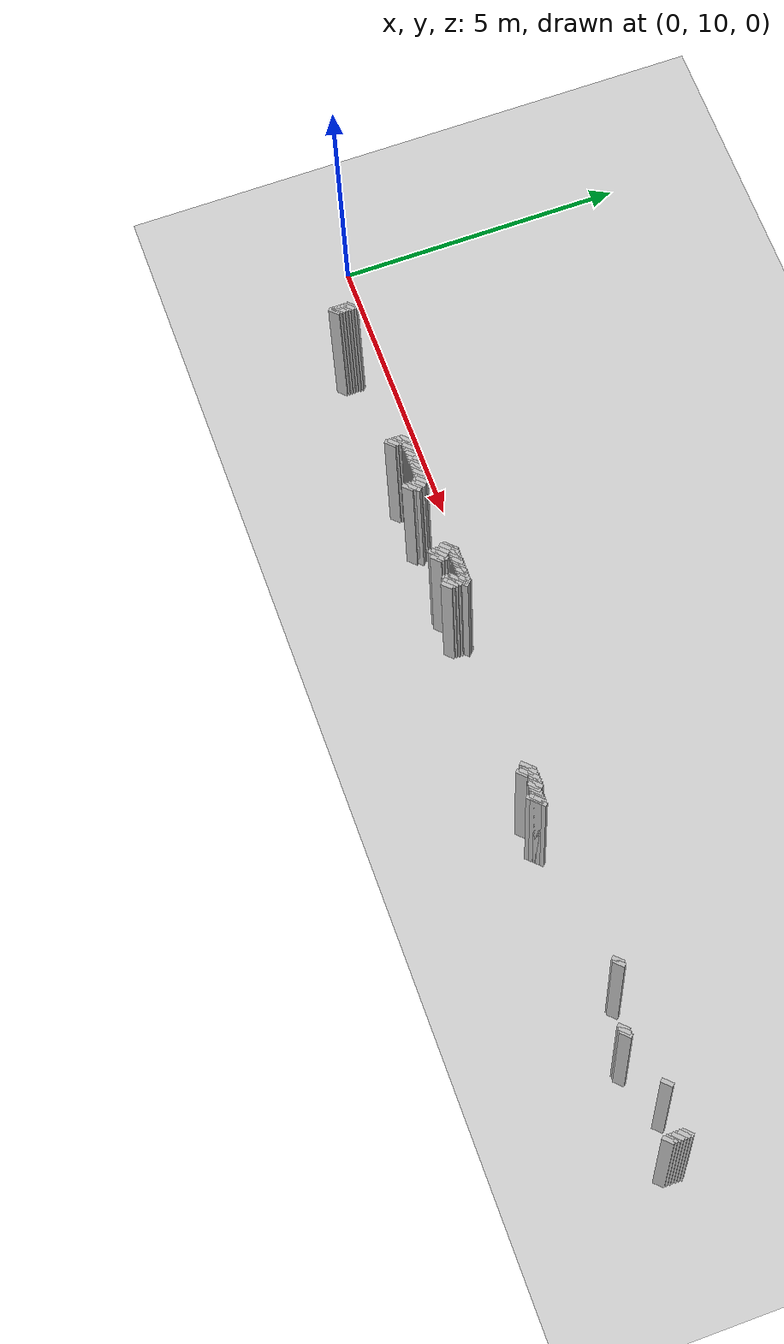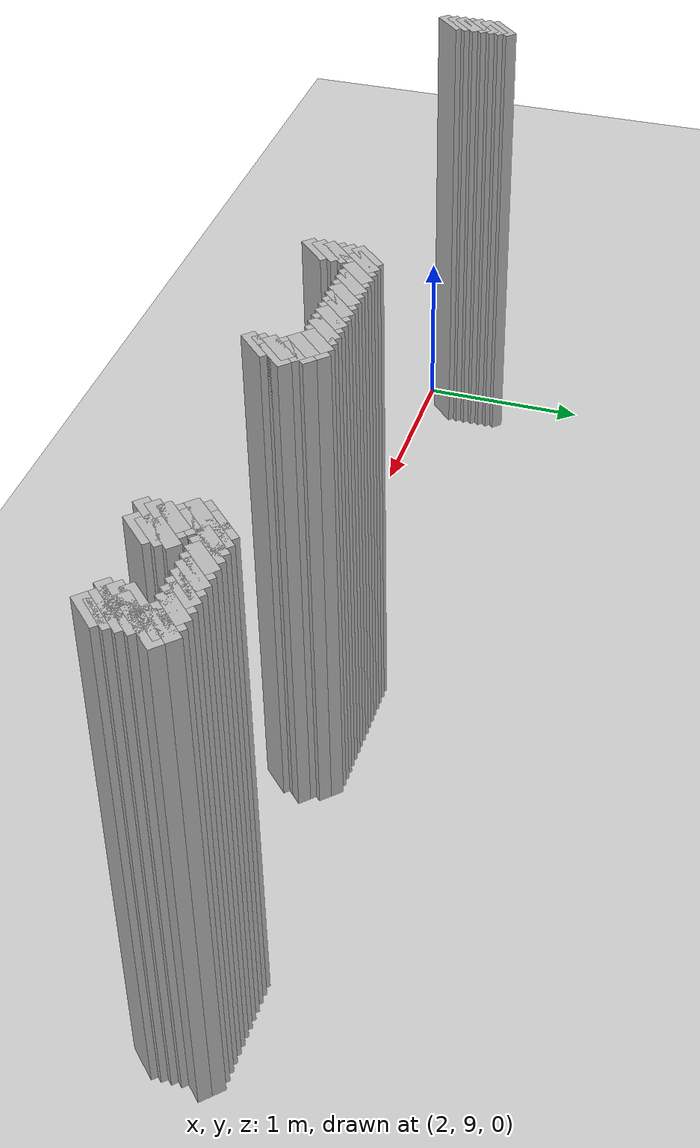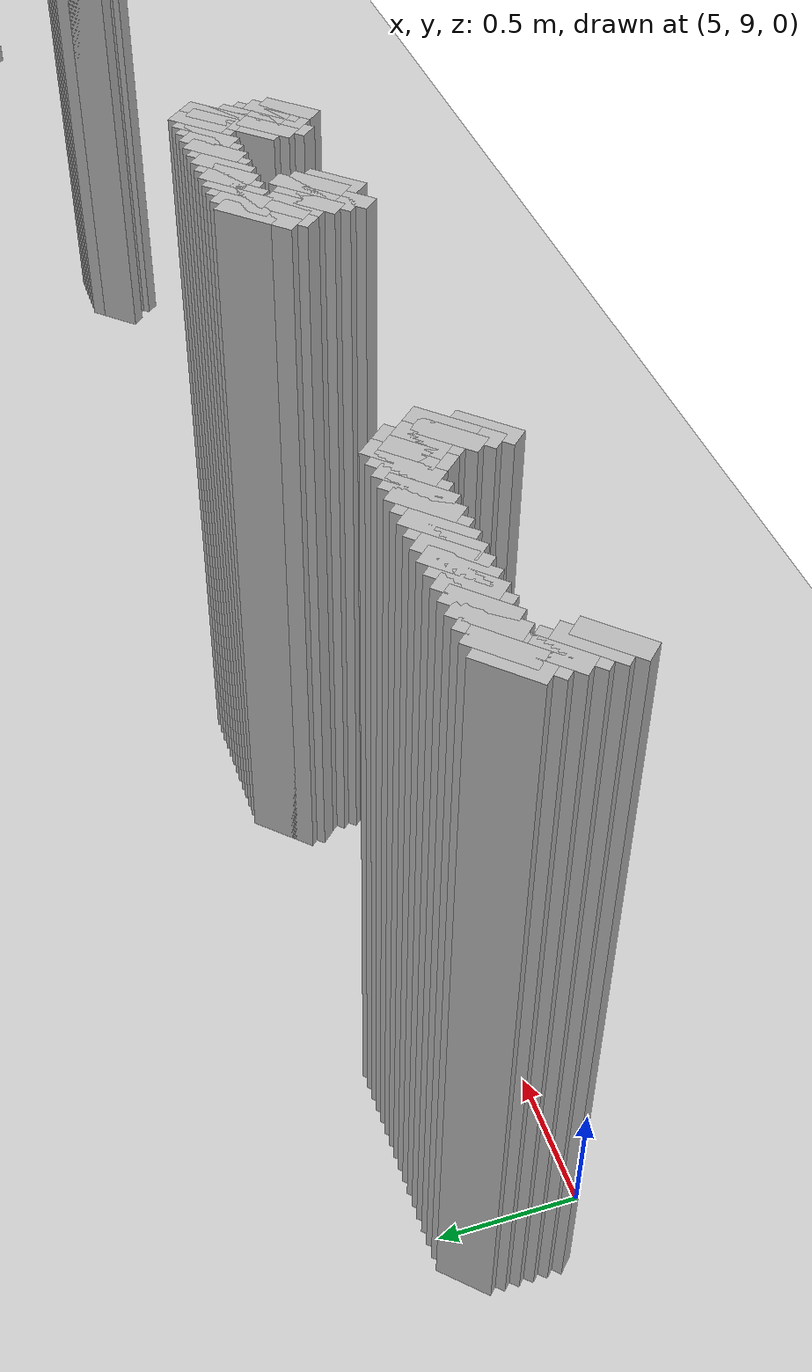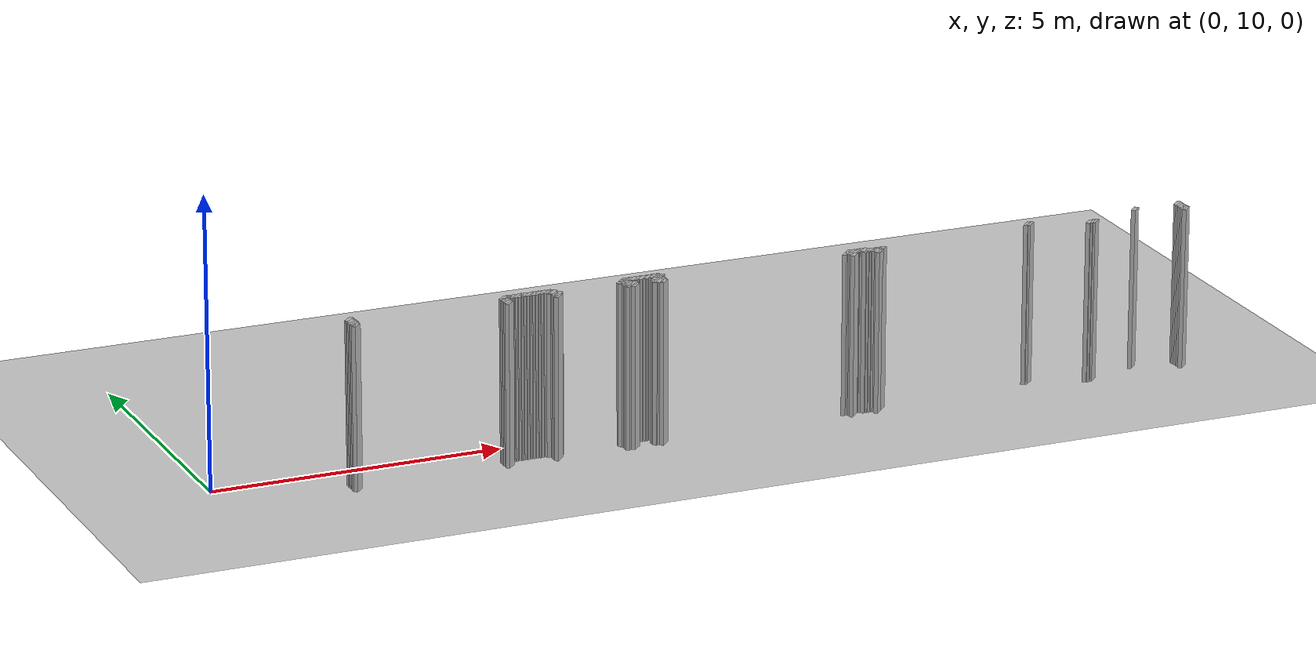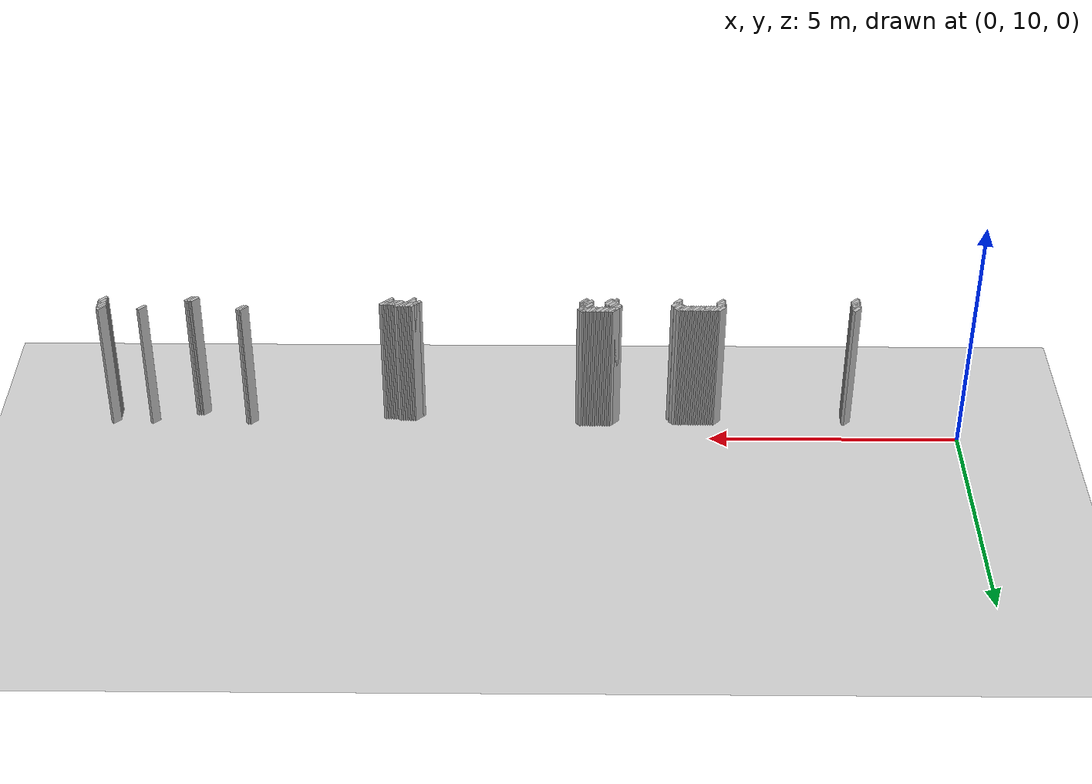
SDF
<sdf version="1.5">
 <world name="default">
  <include><uri>model://ground_plane</uri></include>
  <include><uri>model://sun</uri></include>
  <model name="grey_wall_1692">
   <static>1</static>
   <link name="link">
    <pose>6.95 9.5  1.4 0 0 -0.7853981633974483</pose>
    <collision name="collision">
     <geometry><box><size>0.07071067811865576 .2  2.8</size></box></geometry>
    </collision>
    <visual name="visual">
     <cast_shadows>0</cast_shadows>
     <geometry><box><size>0.07071067811865576 .2  2.8</size></box></geometry>
    </visual>
   </link>
  </model>
  <model name="grey_wall_1693">
   <static>1</static>
   <link name="link">
    <pose>7.0 9.5  1.4 0 0 -0.7853981633974483</pose>
    <collision name="collision">
     <geometry><box><size>0.07071067811865576 .2  2.8</size></box></geometry>
    </collision>
    <visual name="visual">
     <cast_shadows>0</cast_shadows>
     <geometry><box><size>0.07071067811865576 .2  2.8</size></box></geometry>
    </visual>
   </link>
  </model>
  <model name="grey_wall_1694">
   <static>1</static>
   <link name="link">
    <pose>7.050000000000001 9.5  1.4 0 0 -0.7853981633974483</pose>
    <collision name="collision">
     <geometry><box><size>0.07071067811865576 .2  2.8</size></box></geometry>
    </collision>
    <visual name="visual">
     <cast_shadows>0</cast_shadows>
     <geometry><box><size>0.07071067811865576 .2  2.8</size></box></geometry>
    </visual>
   </link>
  </model>
  <model name="grey_wall_1695">
   <static>1</static>
   <link name="link">
    <pose>7.1000000000000005 9.5  1.4 0 0 -0.7853981633974483</pose>
    <collision name="collision">
     <geometry><box><size>0.07071067811865576 .2  2.8</size></box></geometry>
    </collision>
    <visual name="visual">
     <cast_shadows>0</cast_shadows>
     <geometry><box><size>0.07071067811865576 .2  2.8</size></box></geometry>
    </visual>
   </link>
  </model>
  <model name="grey_wall_1696">
   <static>1</static>
   <link name="link">
    <pose>7.15 9.5  1.4 0 0 -0.7853981633974483</pose>
    <collision name="collision">
     <geometry><box><size>0.07071067811865576 .2  2.8</size></box></geometry>
    </collision>
    <visual name="visual">
     <cast_shadows>0</cast_shadows>
     <geometry><box><size>0.07071067811865576 .2  2.8</size></box></geometry>
    </visual>
   </link>
  </model>
  <model name="grey_wall_1697">
   <static>1</static>
   <link name="link">
    <pose>7.2 9.5  1.4 0 0 -0.7853981633974483</pose>
    <collision name="collision">
     <geometry><box><size>0.07071067811865576 .2  2.8</size></box></geometry>
    </collision>
    <visual name="visual">
     <cast_shadows>0</cast_shadows>
     <geometry><box><size>0.07071067811865576 .2  2.8</size></box></geometry>
    </visual>
   </link>
  </model>
  <model name="grey_wall_1698">
   <static>1</static>
   <link name="link">
    <pose>7.25 9.5  1.4 0 0 -0.7853981633974483</pose>
    <collision name="collision">
     <geometry><box><size>0.07071067811865576 .2  2.8</size></box></geometry>
    </collision>
    <visual name="visual">
     <cast_shadows>0</cast_shadows>
     <geometry><box><size>0.07071067811865576 .2  2.8</size></box></geometry>
    </visual>
   </link>
  </model>
  <model name="grey_wall_1699">
   <static>1</static>
   <link name="link">
    <pose>7.300000000000001 9.5  1.4 0 0 -0.7853981633974483</pose>
    <collision name="collision">
     <geometry><box><size>0.07071067811865576 .2  2.8</size></box></geometry>
    </collision>
    <visual name="visual">
     <cast_shadows>0</cast_shadows>
     <geometry><box><size>0.07071067811865576 .2  2.8</size></box></geometry>
    </visual>
   </link>
  </model>
  <model name="grey_wall_1700">
   <static>1</static>
   <link name="link">
    <pose>7.3500000000000005 9.5  1.4 0 0 -0.7853981633974483</pose>
    <collision name="collision">
     <geometry><box><size>0.07071067811865576 .2  2.8</size></box></geometry>
    </collision>
    <visual name="visual">
     <cast_shadows>0</cast_shadows>
     <geometry><box><size>0.07071067811865576 .2  2.8</size></box></geometry>
    </visual>
   </link>
  </model>
  <model name="grey_wall_1701">
   <static>1</static>
   <link name="link">
    <pose>7.4 9.5  1.4 0 0 -0.7853981633974483</pose>
    <collision name="collision">
     <geometry><box><size>0.07071067811865576 .2  2.8</size></box></geometry>
    </collision>
    <visual name="visual">
     <cast_shadows>0</cast_shadows>
     <geometry><box><size>0.07071067811865576 .2  2.8</size></box></geometry>
    </visual>
   </link>
  </model>
  <model name="grey_wall_1702">
   <static>1</static>
   <link name="link">
    <pose>7.45 9.5  1.4 0 0 -0.7853981633974483</pose>
    <collision name="collision">
     <geometry><box><size>0.07071067811865576 .2  2.8</size></box></geometry>
    </collision>
    <visual name="visual">
     <cast_shadows>0</cast_shadows>
     <geometry><box><size>0.07071067811865576 .2  2.8</size></box></geometry>
    </visual>
   </link>
  </model>
  <model name="grey_wall_1703">
   <static>1</static>
   <link name="link">
    <pose>7.5 9.5  1.4 0 0 -0.7853981633974483</pose>
    <collision name="collision">
     <geometry><box><size>0.07071067811865576 .2  2.8</size></box></geometry>
    </collision>
    <visual name="visual">
     <cast_shadows>0</cast_shadows>
     <geometry><box><size>0.07071067811865576 .2  2.8</size></box></geometry>
    </visual>
   </link>
  </model>
  <model name="grey_wall_1704">
   <static>1</static>
   <link name="link">
    <pose>7.550000000000001 9.5  1.4 0 0 -0.7853981633974483</pose>
    <collision name="collision">
     <geometry><box><size>0.07071067811865576 .2  2.8</size></box></geometry>
    </collision>
    <visual name="visual">
     <cast_shadows>0</cast_shadows>
     <geometry><box><size>0.07071067811865576 .2  2.8</size></box></geometry>
    </visual>
   </link>
  </model>
  <model name="grey_wall_1705">
   <static>1</static>
   <link name="link">
    <pose>14.25 9.5  1.4 0 0 -0.7853981633974483</pose>
    <collision name="collision">
     <geometry><box><size>0.07071067811865576 .2  2.8</size></box></geometry>
    </collision>
    <visual name="visual">
     <cast_shadows>0</cast_shadows>
     <geometry><box><size>0.07071067811865576 .2  2.8</size></box></geometry>
    </visual>
   </link>
  </model>
  <model name="grey_wall_1706">
   <static>1</static>
   <link name="link">
    <pose>14.3 9.5  1.4 0 0 -0.7853981633974483</pose>
    <collision name="collision">
     <geometry><box><size>0.07071067811865576 .2  2.8</size></box></geometry>
    </collision>
    <visual name="visual">
     <cast_shadows>0</cast_shadows>
     <geometry><box><size>0.07071067811865576 .2  2.8</size></box></geometry>
    </visual>
   </link>
  </model>
  <model name="grey_wall_1707">
   <static>1</static>
   <link name="link">
    <pose>16.25 9.5  1.4 0 0 -0.7853981633974838</pose>
    <collision name="collision">
     <geometry><box><size>0.07071067811865325 .2  2.8</size></box></geometry>
    </collision>
    <visual name="visual">
     <cast_shadows>0</cast_shadows>
     <geometry><box><size>0.07071067811865325 .2  2.8</size></box></geometry>
    </visual>
   </link>
  </model>
  <model name="grey_wall_1708">
   <static>1</static>
   <link name="link">
    <pose>17.05 9.5  1.4 0 0 -0.7853981633974838</pose>
    <collision name="collision">
     <geometry><box><size>0.07071067811865325 .2  2.8</size></box></geometry>
    </collision>
    <visual name="visual">
     <cast_shadows>0</cast_shadows>
     <geometry><box><size>0.07071067811865325 .2  2.8</size></box></geometry>
    </visual>
   </link>
  </model>
  <model name="grey_wall_1709">
   <static>1</static>
   <link name="link">
    <pose>2.2 9.450000000000001  1.4 0 0 -0.7853981633974572</pose>
    <collision name="collision">
     <geometry><box><size>0.07071067811865513 .2  2.8</size></box></geometry>
    </collision>
    <visual name="visual">
     <cast_shadows>0</cast_shadows>
     <geometry><box><size>0.07071067811865513 .2  2.8</size></box></geometry>
    </visual>
   </link>
  </model>
  <model name="grey_wall_1710">
   <static>1</static>
   <link name="link">
    <pose>4.8500000000000005 9.450000000000001  1.4 0 0 -0.7853981633974483</pose>
    <collision name="collision">
     <geometry><box><size>0.07071067811865576 .2  2.8</size></box></geometry>
    </collision>
    <visual name="visual">
     <cast_shadows>0</cast_shadows>
     <geometry><box><size>0.07071067811865576 .2  2.8</size></box></geometry>
    </visual>
   </link>
  </model>
  <model name="grey_wall_1711">
   <static>1</static>
   <link name="link">
    <pose>4.9 9.450000000000001  1.4 0 0 -0.7853981633974483</pose>
    <collision name="collision">
     <geometry><box><size>0.07071067811865576 .2  2.8</size></box></geometry>
    </collision>
    <visual name="visual">
     <cast_shadows>0</cast_shadows>
     <geometry><box><size>0.07071067811865576 .2  2.8</size></box></geometry>
    </visual>
   </link>
  </model>
  <model name="grey_wall_1712">
   <static>1</static>
   <link name="link">
    <pose>4.95 9.450000000000001  1.4 0 0 -0.7853981633974483</pose>
    <collision name="collision">
     <geometry><box><size>0.07071067811865576 .2  2.8</size></box></geometry>
    </collision>
    <visual name="visual">
     <cast_shadows>0</cast_shadows>
     <geometry><box><size>0.07071067811865576 .2  2.8</size></box></geometry>
    </visual>
   </link>
  </model>
  <model name="grey_wall_1713">
   <static>1</static>
   <link name="link">
    <pose>5.0 9.450000000000001  1.4 0 0 -0.7853981633974483</pose>
    <collision name="collision">
     <geometry><box><size>0.07071067811865576 .2  2.8</size></box></geometry>
    </collision>
    <visual name="visual">
     <cast_shadows>0</cast_shadows>
     <geometry><box><size>0.07071067811865576 .2  2.8</size></box></geometry>
    </visual>
   </link>
  </model>
  <model name="grey_wall_1714">
   <static>1</static>
   <link name="link">
    <pose>5.050000000000001 9.450000000000001  1.4 0 0 -0.7853981633974483</pose>
    <collision name="collision">
     <geometry><box><size>0.07071067811865576 .2  2.8</size></box></geometry>
    </collision>
    <visual name="visual">
     <cast_shadows>0</cast_shadows>
     <geometry><box><size>0.07071067811865576 .2  2.8</size></box></geometry>
    </visual>
   </link>
  </model>
  <model name="grey_wall_1715">
   <static>1</static>
   <link name="link">
    <pose>5.1000000000000005 9.450000000000001  1.4 0 0 -0.7853981633974483</pose>
    <collision name="collision">
     <geometry><box><size>0.07071067811865576 .2  2.8</size></box></geometry>
    </collision>
    <visual name="visual">
     <cast_shadows>0</cast_shadows>
     <geometry><box><size>0.07071067811865576 .2  2.8</size></box></geometry>
    </visual>
   </link>
  </model>
  <model name="grey_wall_1716">
   <static>1</static>
   <link name="link">
    <pose>5.15 9.450000000000001  1.4 0 0 -0.7853981633974483</pose>
    <collision name="collision">
     <geometry><box><size>0.07071067811865576 .2  2.8</size></box></geometry>
    </collision>
    <visual name="visual">
     <cast_shadows>0</cast_shadows>
     <geometry><box><size>0.07071067811865576 .2  2.8</size></box></geometry>
    </visual>
   </link>
  </model>
  <model name="grey_wall_1717">
   <static>1</static>
   <link name="link">
    <pose>5.2 9.450000000000001  1.4 0 0 -0.7853981633974483</pose>
    <collision name="collision">
     <geometry><box><size>0.07071067811865576 .2  2.8</size></box></geometry>
    </collision>
    <visual name="visual">
     <cast_shadows>0</cast_shadows>
     <geometry><box><size>0.07071067811865576 .2  2.8</size></box></geometry>
    </visual>
   </link>
  </model>
  <model name="grey_wall_1718">
   <static>1</static>
   <link name="link">
    <pose>5.25 9.450000000000001  1.4 0 0 -0.7853981633974483</pose>
    <collision name="collision">
     <geometry><box><size>0.07071067811865576 .2  2.8</size></box></geometry>
    </collision>
    <visual name="visual">
     <cast_shadows>0</cast_shadows>
     <geometry><box><size>0.07071067811865576 .2  2.8</size></box></geometry>
    </visual>
   </link>
  </model>
  <model name="grey_wall_1719">
   <static>1</static>
   <link name="link">
    <pose>5.300000000000001 9.450000000000001  1.4 0 0 -0.7853981633974483</pose>
    <collision name="collision">
     <geometry><box><size>0.07071067811865576 .2  2.8</size></box></geometry>
    </collision>
    <visual name="visual">
     <cast_shadows>0</cast_shadows>
     <geometry><box><size>0.07071067811865576 .2  2.8</size></box></geometry>
    </visual>
   </link>
  </model>
  <model name="grey_wall_1720">
   <static>1</static>
   <link name="link">
    <pose>5.3500000000000005 9.450000000000001  1.4 0 0 -0.7853981633974483</pose>
    <collision name="collision">
     <geometry><box><size>0.07071067811865576 .2  2.8</size></box></geometry>
    </collision>
    <visual name="visual">
     <cast_shadows>0</cast_shadows>
     <geometry><box><size>0.07071067811865576 .2  2.8</size></box></geometry>
    </visual>
   </link>
  </model>
  <model name="grey_wall_1721">
   <static>1</static>
   <link name="link">
    <pose>5.4 9.450000000000001  1.4 0 0 -0.7853981633974483</pose>
    <collision name="collision">
     <geometry><box><size>0.07071067811865576 .2  2.8</size></box></geometry>
    </collision>
    <visual name="visual">
     <cast_shadows>0</cast_shadows>
     <geometry><box><size>0.07071067811865576 .2  2.8</size></box></geometry>
    </visual>
   </link>
  </model>
  <model name="grey_wall_1722">
   <static>1</static>
   <link name="link">
    <pose>5.45 9.450000000000001  1.4 0 0 -0.7853981633974483</pose>
    <collision name="collision">
     <geometry><box><size>0.07071067811865576 .2  2.8</size></box></geometry>
    </collision>
    <visual name="visual">
     <cast_shadows>0</cast_shadows>
     <geometry><box><size>0.07071067811865576 .2  2.8</size></box></geometry>
    </visual>
   </link>
  </model>
  <model name="grey_wall_1723">
   <static>1</static>
   <link name="link">
    <pose>5.5 9.450000000000001  1.4 0 0 -0.7853981633974483</pose>
    <collision name="collision">
     <geometry><box><size>0.07071067811865576 .2  2.8</size></box></geometry>
    </collision>
    <visual name="visual">
     <cast_shadows>0</cast_shadows>
     <geometry><box><size>0.07071067811865576 .2  2.8</size></box></geometry>
    </visual>
   </link>
  </model>
  <model name="grey_wall_1724">
   <static>1</static>
   <link name="link">
    <pose>5.550000000000001 9.450000000000001  1.4 0 0 -0.7853981633974483</pose>
    <collision name="collision">
     <geometry><box><size>0.07071067811865576 .2  2.8</size></box></geometry>
    </collision>
    <visual name="visual">
     <cast_shadows>0</cast_shadows>
     <geometry><box><size>0.07071067811865576 .2  2.8</size></box></geometry>
    </visual>
   </link>
  </model>
  <model name="grey_wall_1725">
   <static>1</static>
   <link name="link">
    <pose>5.6000000000000005 9.450000000000001  1.4 0 0 -0.7853981633974483</pose>
    <collision name="collision">
     <geometry><box><size>0.07071067811865576 .2  2.8</size></box></geometry>
    </collision>
    <visual name="visual">
     <cast_shadows>0</cast_shadows>
     <geometry><box><size>0.07071067811865576 .2  2.8</size></box></geometry>
    </visual>
   </link>
  </model>
  <model name="grey_wall_1726">
   <static>1</static>
   <link name="link">
    <pose>5.65 9.450000000000001  1.4 0 0 -0.7853981633974483</pose>
    <collision name="collision">
     <geometry><box><size>0.07071067811865576 .2  2.8</size></box></geometry>
    </collision>
    <visual name="visual">
     <cast_shadows>0</cast_shadows>
     <geometry><box><size>0.07071067811865576 .2  2.8</size></box></geometry>
    </visual>
   </link>
  </model>
  <model name="grey_wall_1727">
   <static>1</static>
   <link name="link">
    <pose>6.9 9.450000000000001  1.4 0 0 -0.7853981633974483</pose>
    <collision name="collision">
     <geometry><box><size>0.07071067811865576 .2  2.8</size></box></geometry>
    </collision>
    <visual name="visual">
     <cast_shadows>0</cast_shadows>
     <geometry><box><size>0.07071067811865576 .2  2.8</size></box></geometry>
    </visual>
   </link>
  </model>
  <model name="grey_wall_1728">
   <static>1</static>
   <link name="link">
    <pose>7.550000000000001 9.450000000000001  1.4 0 0 -0.7853981633974483</pose>
    <collision name="collision">
     <geometry><box><size>0.07071067811865576 .2  2.8</size></box></geometry>
    </collision>
    <visual name="visual">
     <cast_shadows>0</cast_shadows>
     <geometry><box><size>0.07071067811865576 .2  2.8</size></box></geometry>
    </visual>
   </link>
  </model>
  <model name="grey_wall_1729">
   <static>1</static>
   <link name="link">
    <pose>7.6000000000000005 9.450000000000001  1.4 0 0 -0.7853981633974483</pose>
    <collision name="collision">
     <geometry><box><size>0.07071067811865576 .2  2.8</size></box></geometry>
    </collision>
    <visual name="visual">
     <cast_shadows>0</cast_shadows>
     <geometry><box><size>0.07071067811865576 .2  2.8</size></box></geometry>
    </visual>
   </link>
  </model>
  <model name="grey_wall_1730">
   <static>1</static>
   <link name="link">
    <pose>17.05 9.450000000000001  1.4 0 0 -0.7853981633974838</pose>
    <collision name="collision">
     <geometry><box><size>0.07071067811865325 .2  2.8</size></box></geometry>
    </collision>
    <visual name="visual">
     <cast_shadows>0</cast_shadows>
     <geometry><box><size>0.07071067811865325 .2  2.8</size></box></geometry>
    </visual>
   </link>
  </model>
  <model name="grey_wall_1731">
   <static>1</static>
   <link name="link">
    <pose>2.2 9.4  1.4 0 0 -0.7853981633974572</pose>
    <collision name="collision">
     <geometry><box><size>0.07071067811865513 .2  2.8</size></box></geometry>
    </collision>
    <visual name="visual">
     <cast_shadows>0</cast_shadows>
     <geometry><box><size>0.07071067811865513 .2  2.8</size></box></geometry>
    </visual>
   </link>
  </model>
  <model name="grey_wall_1732">
   <static>1</static>
   <link name="link">
    <pose>4.8500000000000005 9.4  1.4 0 0 -0.7853981633974483</pose>
    <collision name="collision">
     <geometry><box><size>0.07071067811865576 .2  2.8</size></box></geometry>
    </collision>
    <visual name="visual">
     <cast_shadows>0</cast_shadows>
     <geometry><box><size>0.07071067811865576 .2  2.8</size></box></geometry>
    </visual>
   </link>
  </model>
  <model name="grey_wall_1733">
   <static>1</static>
   <link name="link">
    <pose>5.65 9.4  1.4 0 0 -0.7853981633974483</pose>
    <collision name="collision">
     <geometry><box><size>0.07071067811865576 .2  2.8</size></box></geometry>
    </collision>
    <visual name="visual">
     <cast_shadows>0</cast_shadows>
     <geometry><box><size>0.07071067811865576 .2  2.8</size></box></geometry>
    </visual>
   </link>
  </model>
  <model name="grey_wall_1734">
   <static>1</static>
   <link name="link">
    <pose>5.7 9.4  1.4 0 0 -0.7853981633974483</pose>
    <collision name="collision">
     <geometry><box><size>0.07071067811865576 .2  2.8</size></box></geometry>
    </collision>
    <visual name="visual">
     <cast_shadows>0</cast_shadows>
     <geometry><box><size>0.07071067811865576 .2  2.8</size></box></geometry>
    </visual>
   </link>
  </model>
  <model name="grey_wall_1735">
   <static>1</static>
   <link name="link">
    <pose>6.9 9.4  1.4 0 0 -0.7853981633974483</pose>
    <collision name="collision">
     <geometry><box><size>0.07071067811865576 .2  2.8</size></box></geometry>
    </collision>
    <visual name="visual">
     <cast_shadows>0</cast_shadows>
     <geometry><box><size>0.07071067811865576 .2  2.8</size></box></geometry>
    </visual>
   </link>
  </model>
  <model name="grey_wall_1736">
   <static>1</static>
   <link name="link">
    <pose>6.95 9.4  1.4 0 0 -0.7853981633974483</pose>
    <collision name="collision">
     <geometry><box><size>0.07071067811865576 .2  2.8</size></box></geometry>
    </collision>
    <visual name="visual">
     <cast_shadows>0</cast_shadows>
     <geometry><box><size>0.07071067811865576 .2  2.8</size></box></geometry>
    </visual>
   </link>
  </model>
  <model name="grey_wall_1737">
   <static>1</static>
   <link name="link">
    <pose>7.550000000000001 9.4  1.4 0 0 -0.7853981633974483</pose>
    <collision name="collision">
     <geometry><box><size>0.07071067811865576 .2  2.8</size></box></geometry>
    </collision>
    <visual name="visual">
     <cast_shadows>0</cast_shadows>
     <geometry><box><size>0.07071067811865576 .2  2.8</size></box></geometry>
    </visual>
   </link>
  </model>
  <model name="grey_wall_1738">
   <static>1</static>
   <link name="link">
    <pose>17.05 9.4  1.4 0 0 -0.7853981633974838</pose>
    <collision name="collision">
     <geometry><box><size>0.07071067811865325 .2  2.8</size></box></geometry>
    </collision>
    <visual name="visual">
     <cast_shadows>0</cast_shadows>
     <geometry><box><size>0.07071067811865325 .2  2.8</size></box></geometry>
    </visual>
   </link>
  </model>
  <model name="grey_wall_1739">
   <static>1</static>
   <link name="link">
    <pose>2.2 9.35  1.4 0 0 -0.7853981633974572</pose>
    <collision name="collision">
     <geometry><box><size>0.07071067811865513 .2  2.8</size></box></geometry>
    </collision>
    <visual name="visual">
     <cast_shadows>0</cast_shadows>
     <geometry><box><size>0.07071067811865513 .2  2.8</size></box></geometry>
    </visual>
   </link>
  </model>
  <model name="grey_wall_1740">
   <static>1</static>
   <link name="link">
    <pose>4.8500000000000005 9.35  1.4 0 0 -0.7853981633974483</pose>
    <collision name="collision">
     <geometry><box><size>0.07071067811865576 .2  2.8</size></box></geometry>
    </collision>
    <visual name="visual">
     <cast_shadows>0</cast_shadows>
     <geometry><box><size>0.07071067811865576 .2  2.8</size></box></geometry>
    </visual>
   </link>
  </model>
  <model name="grey_wall_1741">
   <static>1</static>
   <link name="link">
    <pose>5.7 9.35  1.4 0 0 -0.7853981633974483</pose>
    <collision name="collision">
     <geometry><box><size>0.07071067811865576 .2  2.8</size></box></geometry>
    </collision>
    <visual name="visual">
     <cast_shadows>0</cast_shadows>
     <geometry><box><size>0.07071067811865576 .2  2.8</size></box></geometry>
    </visual>
   </link>
  </model>
  <model name="grey_wall_1742">
   <static>1</static>
   <link name="link">
    <pose>6.95 9.35  1.4 0 0 -0.7853981633974483</pose>
    <collision name="collision">
     <geometry><box><size>0.07071067811865576 .2  2.8</size></box></geometry>
    </collision>
    <visual name="visual">
     <cast_shadows>0</cast_shadows>
     <geometry><box><size>0.07071067811865576 .2  2.8</size></box></geometry>
    </visual>
   </link>
  </model>
  <model name="grey_wall_1743">
   <static>1</static>
   <link name="link">
    <pose>7.45 9.35  1.4 0 0 -0.7853981633974483</pose>
    <collision name="collision">
     <geometry><box><size>0.07071067811865576 .2  2.8</size></box></geometry>
    </collision>
    <visual name="visual">
     <cast_shadows>0</cast_shadows>
     <geometry><box><size>0.07071067811865576 .2  2.8</size></box></geometry>
    </visual>
   </link>
  </model>
  <model name="grey_wall_1744">
   <static>1</static>
   <link name="link">
    <pose>7.5 9.35  1.4 0 0 -0.7853981633974483</pose>
    <collision name="collision">
     <geometry><box><size>0.07071067811865576 .2  2.8</size></box></geometry>
    </collision>
    <visual name="visual">
     <cast_shadows>0</cast_shadows>
     <geometry><box><size>0.07071067811865576 .2  2.8</size></box></geometry>
    </visual>
   </link>
  </model>
  <model name="grey_wall_1745">
   <static>1</static>
   <link name="link">
    <pose>7.550000000000001 9.35  1.4 0 0 -0.7853981633974483</pose>
    <collision name="collision">
     <geometry><box><size>0.07071067811865576 .2  2.8</size></box></geometry>
    </collision>
    <visual name="visual">
     <cast_shadows>0</cast_shadows>
     <geometry><box><size>0.07071067811865576 .2  2.8</size></box></geometry>
    </visual>
   </link>
  </model>
  <model name="grey_wall_1746">
   <static>1</static>
   <link name="link">
    <pose>10.9 9.35  1.4 0 0 -0.7853981633974483</pose>
    <collision name="collision">
     <geometry><box><size>0.07071067811865576 .2  2.8</size></box></geometry>
    </collision>
    <visual name="visual">
     <cast_shadows>0</cast_shadows>
     <geometry><box><size>0.07071067811865576 .2  2.8</size></box></geometry>
    </visual>
   </link>
  </model>
  <model name="grey_wall_1747">
   <static>1</static>
   <link name="link">
    <pose>10.950000000000001 9.35  1.4 0 0 -0.7853981633974483</pose>
    <collision name="collision">
     <geometry><box><size>0.07071067811865576 .2  2.8</size></box></geometry>
    </collision>
    <visual name="visual">
     <cast_shadows>0</cast_shadows>
     <geometry><box><size>0.07071067811865576 .2  2.8</size></box></geometry>
    </visual>
   </link>
  </model>
  <model name="grey_wall_1748">
   <static>1</static>
   <link name="link">
    <pose>11.0 9.35  1.4 0 0 -0.7853981633974483</pose>
    <collision name="collision">
     <geometry><box><size>0.07071067811865576 .2  2.8</size></box></geometry>
    </collision>
    <visual name="visual">
     <cast_shadows>0</cast_shadows>
     <geometry><box><size>0.07071067811865576 .2  2.8</size></box></geometry>
    </visual>
   </link>
  </model>
  <model name="grey_wall_1749">
   <static>1</static>
   <link name="link">
    <pose>11.05 9.35  1.4 0 0 -0.7853981633974483</pose>
    <collision name="collision">
     <geometry><box><size>0.07071067811865576 .2  2.8</size></box></geometry>
    </collision>
    <visual name="visual">
     <cast_shadows>0</cast_shadows>
     <geometry><box><size>0.07071067811865576 .2  2.8</size></box></geometry>
    </visual>
   </link>
  </model>
  <model name="grey_wall_1750">
   <static>1</static>
   <link name="link">
    <pose>11.100000000000001 9.35  1.4 0 0 -0.7853981633974483</pose>
    <collision name="collision">
     <geometry><box><size>0.07071067811865576 .2  2.8</size></box></geometry>
    </collision>
    <visual name="visual">
     <cast_shadows>0</cast_shadows>
     <geometry><box><size>0.07071067811865576 .2  2.8</size></box></geometry>
    </visual>
   </link>
  </model>
  <model name="grey_wall_1751">
   <static>1</static>
   <link name="link">
    <pose>11.15 9.35  1.4 0 0 -0.7853981633974483</pose>
    <collision name="collision">
     <geometry><box><size>0.07071067811865576 .2  2.8</size></box></geometry>
    </collision>
    <visual name="visual">
     <cast_shadows>0</cast_shadows>
     <geometry><box><size>0.07071067811865576 .2  2.8</size></box></geometry>
    </visual>
   </link>
  </model>
  <model name="grey_wall_1752">
   <static>1</static>
   <link name="link">
    <pose>11.200000000000001 9.35  1.4 0 0 -0.7853981633974483</pose>
    <collision name="collision">
     <geometry><box><size>0.07071067811865576 .2  2.8</size></box></geometry>
    </collision>
    <visual name="visual">
     <cast_shadows>0</cast_shadows>
     <geometry><box><size>0.07071067811865576 .2  2.8</size></box></geometry>
    </visual>
   </link>
  </model>
  <model name="grey_wall_1753">
   <static>1</static>
   <link name="link">
    <pose>17.05 9.35  1.4 0 0 -0.7853981633974838</pose>
    <collision name="collision">
     <geometry><box><size>0.07071067811865325 .2  2.8</size></box></geometry>
    </collision>
    <visual name="visual">
     <cast_shadows>0</cast_shadows>
     <geometry><box><size>0.07071067811865325 .2  2.8</size></box></geometry>
    </visual>
   </link>
  </model>
  <model name="grey_wall_1754">
   <static>1</static>
   <link name="link">
    <pose>2.2 9.3  1.4 0 0 -0.7853981633974572</pose>
    <collision name="collision">
     <geometry><box><size>0.07071067811865513 .2  2.8</size></box></geometry>
    </collision>
    <visual name="visual">
     <cast_shadows>0</cast_shadows>
     <geometry><box><size>0.07071067811865513 .2  2.8</size></box></geometry>
    </visual>
   </link>
  </model>
  <model name="grey_wall_1755">
   <static>1</static>
   <link name="link">
    <pose>4.8500000000000005 9.3  1.4 0 0 -0.7853981633974483</pose>
    <collision name="collision">
     <geometry><box><size>0.07071067811865576 .2  2.8</size></box></geometry>
    </collision>
    <visual name="visual">
     <cast_shadows>0</cast_shadows>
     <geometry><box><size>0.07071067811865576 .2  2.8</size></box></geometry>
    </visual>
   </link>
  </model>
  <model name="grey_wall_1756">
   <static>1</static>
   <link name="link">
    <pose>5.7 9.3  1.4 0 0 -0.7853981633974483</pose>
    <collision name="collision">
     <geometry><box><size>0.07071067811865576 .2  2.8</size></box></geometry>
    </collision>
    <visual name="visual">
     <cast_shadows>0</cast_shadows>
     <geometry><box><size>0.07071067811865576 .2  2.8</size></box></geometry>
    </visual>
   </link>
  </model>
  <model name="grey_wall_1757">
   <static>1</static>
   <link name="link">
    <pose>5.75 9.3  1.4 0 0 -0.7853981633974483</pose>
    <collision name="collision">
     <geometry><box><size>0.07071067811865576 .2  2.8</size></box></geometry>
    </collision>
    <visual name="visual">
     <cast_shadows>0</cast_shadows>
     <geometry><box><size>0.07071067811865576 .2  2.8</size></box></geometry>
    </visual>
   </link>
  </model>
  <model name="grey_wall_1758">
   <static>1</static>
   <link name="link">
    <pose>6.95 9.3  1.4 0 0 -0.7853981633974483</pose>
    <collision name="collision">
     <geometry><box><size>0.07071067811865576 .2  2.8</size></box></geometry>
    </collision>
    <visual name="visual">
     <cast_shadows>0</cast_shadows>
     <geometry><box><size>0.07071067811865576 .2  2.8</size></box></geometry>
    </visual>
   </link>
  </model>
  <model name="grey_wall_1759">
   <static>1</static>
   <link name="link">
    <pose>7.0 9.3  1.4 0 0 -0.7853981633974483</pose>
    <collision name="collision">
     <geometry><box><size>0.07071067811865576 .2  2.8</size></box></geometry>
    </collision>
    <visual name="visual">
     <cast_shadows>0</cast_shadows>
     <geometry><box><size>0.07071067811865576 .2  2.8</size></box></geometry>
    </visual>
   </link>
  </model>
  <model name="grey_wall_1760">
   <static>1</static>
   <link name="link">
    <pose>7.050000000000001 9.3  1.4 0 0 -0.7853981633974483</pose>
    <collision name="collision">
     <geometry><box><size>0.07071067811865576 .2  2.8</size></box></geometry>
    </collision>
    <visual name="visual">
     <cast_shadows>0</cast_shadows>
     <geometry><box><size>0.07071067811865576 .2  2.8</size></box></geometry>
    </visual>
   </link>
  </model>
  <model name="grey_wall_1761">
   <static>1</static>
   <link name="link">
    <pose>7.45 9.3  1.4 0 0 -0.7853981633974483</pose>
    <collision name="collision">
     <geometry><box><size>0.07071067811865576 .2  2.8</size></box></geometry>
    </collision>
    <visual name="visual">
     <cast_shadows>0</cast_shadows>
     <geometry><box><size>0.07071067811865576 .2  2.8</size></box></geometry>
    </visual>
   </link>
  </model>
  <model name="grey_wall_1762">
   <static>1</static>
   <link name="link">
    <pose>7.550000000000001 9.3  1.4 0 0 -0.7853981633974483</pose>
    <collision name="collision">
     <geometry><box><size>0.07071067811865576 .2  2.8</size></box></geometry>
    </collision>
    <visual name="visual">
     <cast_shadows>0</cast_shadows>
     <geometry><box><size>0.07071067811865576 .2  2.8</size></box></geometry>
    </visual>
   </link>
  </model>
  <model name="grey_wall_1763">
   <static>1</static>
   <link name="link">
    <pose>10.850000000000001 9.3  1.4 0 0 -0.7853981633974483</pose>
    <collision name="collision">
     <geometry><box><size>0.07071067811865576 .2  2.8</size></box></geometry>
    </collision>
    <visual name="visual">
     <cast_shadows>0</cast_shadows>
     <geometry><box><size>0.07071067811865576 .2  2.8</size></box></geometry>
    </visual>
   </link>
  </model>
  <model name="grey_wall_1764">
   <static>1</static>
   <link name="link">
    <pose>10.950000000000001 9.3  1.4 0 0 -0.7853981633974483</pose>
    <collision name="collision">
     <geometry><box><size>0.07071067811865576 .2  2.8</size></box></geometry>
    </collision>
    <visual name="visual">
     <cast_shadows>0</cast_shadows>
     <geometry><box><size>0.07071067811865576 .2  2.8</size></box></geometry>
    </visual>
   </link>
  </model>
  <model name="grey_wall_1765">
   <static>1</static>
   <link name="link">
    <pose>11.200000000000001 9.3  1.4 0 0 -0.7853981633974483</pose>
    <collision name="collision">
     <geometry><box><size>0.07071067811865576 .2  2.8</size></box></geometry>
    </collision>
    <visual name="visual">
     <cast_shadows>0</cast_shadows>
     <geometry><box><size>0.07071067811865576 .2  2.8</size></box></geometry>
    </visual>
   </link>
  </model>
  <model name="grey_wall_1766">
   <static>1</static>
   <link name="link">
    <pose>11.25 9.3  1.4 0 0 -0.7853981633974483</pose>
    <collision name="collision">
     <geometry><box><size>0.07071067811865576 .2  2.8</size></box></geometry>
    </collision>
    <visual name="visual">
     <cast_shadows>0</cast_shadows>
     <geometry><box><size>0.07071067811865576 .2  2.8</size></box></geometry>
    </visual>
   </link>
  </model>
  <model name="grey_wall_1767">
   <static>1</static>
   <link name="link">
    <pose>11.3 9.3  1.4 0 0 -0.7853981633974483</pose>
    <collision name="collision">
     <geometry><box><size>0.07071067811865576 .2  2.8</size></box></geometry>
    </collision>
    <visual name="visual">
     <cast_shadows>0</cast_shadows>
     <geometry><box><size>0.07071067811865576 .2  2.8</size></box></geometry>
    </visual>
   </link>
  </model>
  <model name="grey_wall_1768">
   <static>1</static>
   <link name="link">
    <pose>11.350000000000001 9.3  1.4 0 0 -0.7853981633974483</pose>
    <collision name="collision">
     <geometry><box><size>0.07071067811865576 .2  2.8</size></box></geometry>
    </collision>
    <visual name="visual">
     <cast_shadows>0</cast_shadows>
     <geometry><box><size>0.07071067811865576 .2  2.8</size></box></geometry>
    </visual>
   </link>
  </model>
  <model name="grey_wall_1769">
   <static>1</static>
   <link name="link">
    <pose>11.4 9.3  1.4 0 0 -0.7853981633974483</pose>
    <collision name="collision">
     <geometry><box><size>0.07071067811865576 .2  2.8</size></box></geometry>
    </collision>
    <visual name="visual">
     <cast_shadows>0</cast_shadows>
     <geometry><box><size>0.07071067811865576 .2  2.8</size></box></geometry>
    </visual>
   </link>
  </model>
  <model name="grey_wall_1770">
   <static>1</static>
   <link name="link">
    <pose>11.450000000000001 9.3  1.4 0 0 -0.7853981633974483</pose>
    <collision name="collision">
     <geometry><box><size>0.07071067811865576 .2  2.8</size></box></geometry>
    </collision>
    <visual name="visual">
     <cast_shadows>0</cast_shadows>
     <geometry><box><size>0.07071067811865576 .2  2.8</size></box></geometry>
    </visual>
   </link>
  </model>
  <model name="grey_wall_1771">
   <static>1</static>
   <link name="link">
    <pose>11.5 9.3  1.4 0 0 -0.7853981633974483</pose>
    <collision name="collision">
     <geometry><box><size>0.07071067811865576 .2  2.8</size></box></geometry>
    </collision>
    <visual name="visual">
     <cast_shadows>0</cast_shadows>
     <geometry><box><size>0.07071067811865576 .2  2.8</size></box></geometry>
    </visual>
   </link>
  </model>
  <model name="grey_wall_1772">
   <static>1</static>
   <link name="link">
    <pose>17.05 9.3  1.4 0 0 -0.7853981633974838</pose>
    <collision name="collision">
     <geometry><box><size>0.07071067811865325 .2  2.8</size></box></geometry>
    </collision>
    <visual name="visual">
     <cast_shadows>0</cast_shadows>
     <geometry><box><size>0.07071067811865325 .2  2.8</size></box></geometry>
    </visual>
   </link>
  </model>
  <model name="grey_wall_1773">
   <static>1</static>
   <link name="link">
    <pose>2.2 9.25  1.4 0 0 -0.7853981633974572</pose>
    <collision name="collision">
     <geometry><box><size>0.07071067811865513 .2  2.8</size></box></geometry>
    </collision>
    <visual name="visual">
     <cast_shadows>0</cast_shadows>
     <geometry><box><size>0.07071067811865513 .2  2.8</size></box></geometry>
    </visual>
   </link>
  </model>
  <model name="grey_wall_1774">
   <static>1</static>
   <link name="link">
    <pose>4.8500000000000005 9.25  1.4 0 0 -0.7853981633974483</pose>
    <collision name="collision">
     <geometry><box><size>0.07071067811865576 .2  2.8</size></box></geometry>
    </collision>
    <visual name="visual">
     <cast_shadows>0</cast_shadows>
     <geometry><box><size>0.07071067811865576 .2  2.8</size></box></geometry>
    </visual>
   </link>
  </model>
  <model name="grey_wall_1775">
   <static>1</static>
   <link name="link">
    <pose>5.7 9.25  1.4 0 0 -0.7853981633974483</pose>
    <collision name="collision">
     <geometry><box><size>0.07071067811865576 .2  2.8</size></box></geometry>
    </collision>
    <visual name="visual">
     <cast_shadows>0</cast_shadows>
     <geometry><box><size>0.07071067811865576 .2  2.8</size></box></geometry>
    </visual>
   </link>
  </model>
  <model name="grey_wall_1776">
   <static>1</static>
   <link name="link">
    <pose>6.95 9.25  1.4 0 0 -0.7853981633974483</pose>
    <collision name="collision">
     <geometry><box><size>0.07071067811865576 .2  2.8</size></box></geometry>
    </collision>
    <visual name="visual">
     <cast_shadows>0</cast_shadows>
     <geometry><box><size>0.07071067811865576 .2  2.8</size></box></geometry>
    </visual>
   </link>
  </model>
  <model name="grey_wall_1777">
   <static>1</static>
   <link name="link">
    <pose>7.050000000000001 9.25  1.4 0 0 -0.7853981633974483</pose>
    <collision name="collision">
     <geometry><box><size>0.07071067811865576 .2  2.8</size></box></geometry>
    </collision>
    <visual name="visual">
     <cast_shadows>0</cast_shadows>
     <geometry><box><size>0.07071067811865576 .2  2.8</size></box></geometry>
    </visual>
   </link>
  </model>
  <model name="grey_wall_1778">
   <static>1</static>
   <link name="link">
    <pose>7.45 9.25  1.4 0 0 -0.7853981633974483</pose>
    <collision name="collision">
     <geometry><box><size>0.07071067811865576 .2  2.8</size></box></geometry>
    </collision>
    <visual name="visual">
     <cast_shadows>0</cast_shadows>
     <geometry><box><size>0.07071067811865576 .2  2.8</size></box></geometry>
    </visual>
   </link>
  </model>
  <model name="grey_wall_1779">
   <static>1</static>
   <link name="link">
    <pose>7.5 9.25  1.4 0 0 -0.7853981633974483</pose>
    <collision name="collision">
     <geometry><box><size>0.07071067811865576 .2  2.8</size></box></geometry>
    </collision>
    <visual name="visual">
     <cast_shadows>0</cast_shadows>
     <geometry><box><size>0.07071067811865576 .2  2.8</size></box></geometry>
    </visual>
   </link>
  </model>
  <model name="grey_wall_1780">
   <static>1</static>
   <link name="link">
    <pose>7.550000000000001 9.25  1.4 0 0 -0.7853981633974483</pose>
    <collision name="collision">
     <geometry><box><size>0.07071067811865576 .2  2.8</size></box></geometry>
    </collision>
    <visual name="visual">
     <cast_shadows>0</cast_shadows>
     <geometry><box><size>0.07071067811865576 .2  2.8</size></box></geometry>
    </visual>
   </link>
  </model>
  <model name="grey_wall_1781">
   <static>1</static>
   <link name="link">
    <pose>10.950000000000001 9.25  1.4 0 0 -0.7853981633974483</pose>
    <collision name="collision">
     <geometry><box><size>0.07071067811865576 .2  2.8</size></box></geometry>
    </collision>
    <visual name="visual">
     <cast_shadows>0</cast_shadows>
     <geometry><box><size>0.07071067811865576 .2  2.8</size></box></geometry>
    </visual>
   </link>
  </model>
  <model name="grey_wall_1782">
   <static>1</static>
   <link name="link">
    <pose>11.4 9.25  1.4 0 0 -0.7853981633974483</pose>
    <collision name="collision">
     <geometry><box><size>0.07071067811865576 .2  2.8</size></box></geometry>
    </collision>
    <visual name="visual">
     <cast_shadows>0</cast_shadows>
     <geometry><box><size>0.07071067811865576 .2  2.8</size></box></geometry>
    </visual>
   </link>
  </model>
  <model name="grey_wall_1783">
   <static>1</static>
   <link name="link">
    <pose>11.450000000000001 9.25  1.4 0 0 -0.7853981633974483</pose>
    <collision name="collision">
     <geometry><box><size>0.07071067811865576 .2  2.8</size></box></geometry>
    </collision>
    <visual name="visual">
     <cast_shadows>0</cast_shadows>
     <geometry><box><size>0.07071067811865576 .2  2.8</size></box></geometry>
    </visual>
   </link>
  </model>
  <model name="grey_wall_1784">
   <static>1</static>
   <link name="link">
    <pose>17.05 9.25  1.4 0 0 -0.7853981633974838</pose>
    <collision name="collision">
     <geometry><box><size>0.07071067811865325 .2  2.8</size></box></geometry>
    </collision>
    <visual name="visual">
     <cast_shadows>0</cast_shadows>
     <geometry><box><size>0.07071067811865325 .2  2.8</size></box></geometry>
    </visual>
   </link>
  </model>
  <model name="grey_wall_1785">
   <static>1</static>
   <link name="link">
    <pose>2.2 9.200000000000001  1.4 0 0 -0.7853981633974572</pose>
    <collision name="collision">
     <geometry><box><size>0.07071067811865513 .2  2.8</size></box></geometry>
    </collision>
    <visual name="visual">
     <cast_shadows>0</cast_shadows>
     <geometry><box><size>0.07071067811865513 .2  2.8</size></box></geometry>
    </visual>
   </link>
  </model>
  <model name="grey_wall_1786">
   <static>1</static>
   <link name="link">
    <pose>4.8500000000000005 9.200000000000001  1.4 0 0 -0.7853981633974483</pose>
    <collision name="collision">
     <geometry><box><size>0.07071067811865576 .2  2.8</size></box></geometry>
    </collision>
    <visual name="visual">
     <cast_shadows>0</cast_shadows>
     <geometry><box><size>0.07071067811865576 .2  2.8</size></box></geometry>
    </visual>
   </link>
  </model>
  <model name="grey_wall_1787">
   <static>1</static>
   <link name="link">
    <pose>5.7 9.200000000000001  1.4 0 0 -0.7853981633974483</pose>
    <collision name="collision">
     <geometry><box><size>0.07071067811865576 .2  2.8</size></box></geometry>
    </collision>
    <visual name="visual">
     <cast_shadows>0</cast_shadows>
     <geometry><box><size>0.07071067811865576 .2  2.8</size></box></geometry>
    </visual>
   </link>
  </model>
  <model name="grey_wall_1788">
   <static>1</static>
   <link name="link">
    <pose>6.95 9.200000000000001  1.4 0 0 -0.7853981633974483</pose>
    <collision name="collision">
     <geometry><box><size>0.07071067811865576 .2  2.8</size></box></geometry>
    </collision>
    <visual name="visual">
     <cast_shadows>0</cast_shadows>
     <geometry><box><size>0.07071067811865576 .2  2.8</size></box></geometry>
    </visual>
   </link>
  </model>
  <model name="grey_wall_1789">
   <static>1</static>
   <link name="link">
    <pose>7.050000000000001 9.200000000000001  1.4 0 0 -0.7853981633974483</pose>
    <collision name="collision">
     <geometry><box><size>0.07071067811865576 .2  2.8</size></box></geometry>
    </collision>
    <visual name="visual">
     <cast_shadows>0</cast_shadows>
     <geometry><box><size>0.07071067811865576 .2  2.8</size></box></geometry>
    </visual>
   </link>
  </model>
  <model name="grey_wall_1790">
   <static>1</static>
   <link name="link">
    <pose>7.550000000000001 9.200000000000001  1.4 0 0 -0.7853981633974483</pose>
    <collision name="collision">
     <geometry><box><size>0.07071067811865576 .2  2.8</size></box></geometry>
    </collision>
    <visual name="visual">
     <cast_shadows>0</cast_shadows>
     <geometry><box><size>0.07071067811865576 .2  2.8</size></box></geometry>
    </visual>
   </link>
  </model>
  <model name="grey_wall_1791">
   <static>1</static>
   <link name="link">
    <pose>10.950000000000001 9.200000000000001  1.4 0 0 -0.7853981633974483</pose>
    <collision name="collision">
     <geometry><box><size>0.07071067811865576 .2  2.8</size></box></geometry>
    </collision>
    <visual name="visual">
     <cast_shadows>0</cast_shadows>
     <geometry><box><size>0.07071067811865576 .2  2.8</size></box></geometry>
    </visual>
   </link>
  </model>
  <model name="grey_wall_1792">
   <static>1</static>
   <link name="link">
    <pose>11.4 9.200000000000001  1.4 0 0 -0.7853981633974483</pose>
    <collision name="collision">
     <geometry><box><size>0.07071067811865576 .2  2.8</size></box></geometry>
    </collision>
    <visual name="visual">
     <cast_shadows>0</cast_shadows>
     <geometry><box><size>0.07071067811865576 .2  2.8</size></box></geometry>
    </visual>
   </link>
  </model>
  <model name="grey_wall_1793">
   <static>1</static>
   <link name="link">
    <pose>15.25 9.200000000000001  1.4 0 0 -0.7853981633974483</pose>
    <collision name="collision">
     <geometry><box><size>0.07071067811865576 .2  2.8</size></box></geometry>
    </collision>
    <visual name="visual">
     <cast_shadows>0</cast_shadows>
     <geometry><box><size>0.07071067811865576 .2  2.8</size></box></geometry>
    </visual>
   </link>
  </model>
  <model name="grey_wall_1794">
   <static>1</static>
   <link name="link">
    <pose>15.3 9.200000000000001  1.4 0 0 -0.7853981633974483</pose>
    <collision name="collision">
     <geometry><box><size>0.07071067811865576 .2  2.8</size></box></geometry>
    </collision>
    <visual name="visual">
     <cast_shadows>0</cast_shadows>
     <geometry><box><size>0.07071067811865576 .2  2.8</size></box></geometry>
    </visual>
   </link>
  </model>
  <model name="grey_wall_1795">
   <static>1</static>
   <link name="link">
    <pose>15.350000000000001 9.200000000000001  1.4 0 0 -0.7853981633974483</pose>
    <collision name="collision">
     <geometry><box><size>0.07071067811865576 .2  2.8</size></box></geometry>
    </collision>
    <visual name="visual">
     <cast_shadows>0</cast_shadows>
     <geometry><box><size>0.07071067811865576 .2  2.8</size></box></geometry>
    </visual>
   </link>
  </model>
  <model name="grey_wall_1796">
   <static>1</static>
   <link name="link">
    <pose>17.05 9.200000000000001  1.4 0 0 -0.7853981633974838</pose>
    <collision name="collision">
     <geometry><box><size>0.07071067811865325 .2  2.8</size></box></geometry>
    </collision>
    <visual name="visual">
     <cast_shadows>0</cast_shadows>
     <geometry><box><size>0.07071067811865325 .2  2.8</size></box></geometry>
    </visual>
   </link>
  </model>
  <model name="grey_wall_1797">
   <static>1</static>
   <link name="link">
    <pose>2.2 9.15  1.4 0 0 -0.7853981633974572</pose>
    <collision name="collision">
     <geometry><box><size>0.07071067811865513 .2  2.8</size></box></geometry>
    </collision>
    <visual name="visual">
     <cast_shadows>0</cast_shadows>
     <geometry><box><size>0.07071067811865513 .2  2.8</size></box></geometry>
    </visual>
   </link>
  </model>
 </world>
</sdf>
